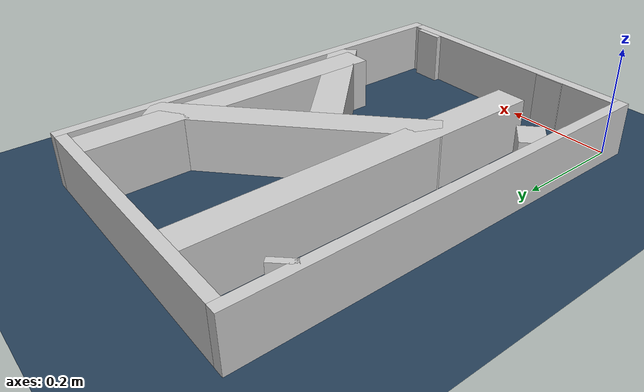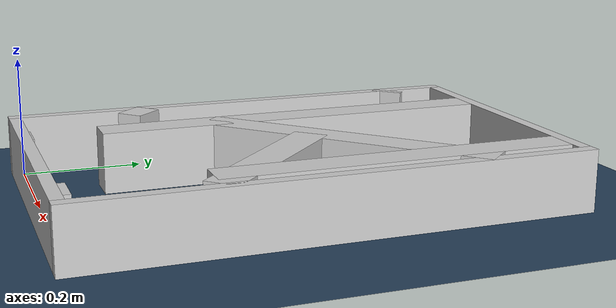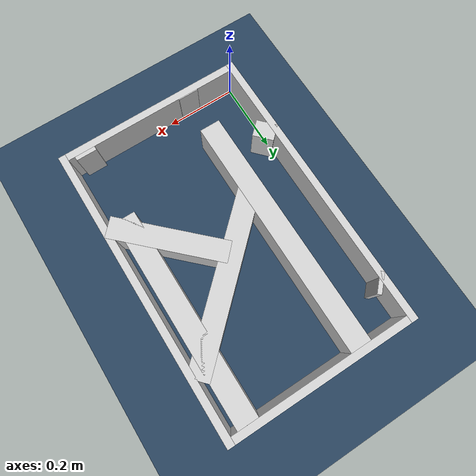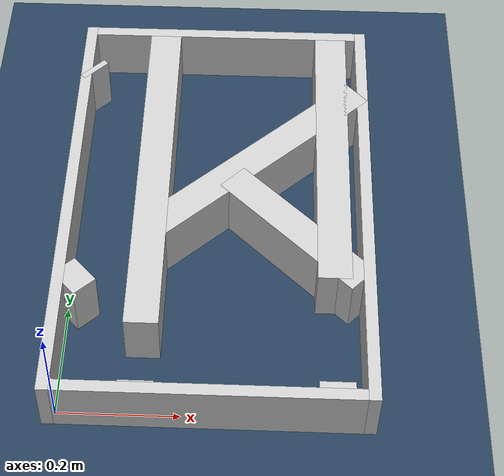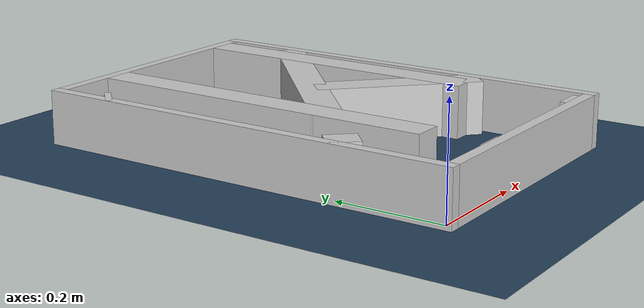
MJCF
<?xml version="1.0" ?>
<mujoco model="generated_real_template">
  <compiler angle="degree"/>
  <option timestep="0.002" integrator="implicitfast" iterations="100" cone="elliptic"/>
  <default>
    <geom density="1"/>
  </default>
  <asset>
    <texture builtin="gradient" height="3072" rgb1="0.3 0.5 0.7" rgb2="0 0 0" type="skybox" width="512"/>
    <texture builtin="checker" height="300" mark="edge" markrgb="0.8 0.8 0.8" name="groundplane" rgb1="0.2 0.3 0.4" rgb2="0.1 0.2 0.3" type="2d" width="300"/>
    <material name="groundplane" reflectance="0.2" texrepeat="5 5" texture="groundplane" texuniform="true"/>
  </asset>
  <worldbody>
    <light dir="0 0 -1" directional="true" pos="0 0 1.5"/>
    <geom name="floor" type="plane" condim="4" friction="0.5 0.005 0.001" material="groundplane" size="0 0 0.05"/>
    <body name="walls">
      <geom name="wall_boundary_left" type="box" condim="4" friction="1.0 0.005 0.0001" rgba="0.8 0.8 0.8 1" pos="-0.010000 0.387500 0.050000" euler="0 0 0.000000" size="0.010000 0.407500 0.050000"/>
      <geom name="wall_boundary_right" type="box" condim="4" friction="1.0 0.005 0.0001" rgba="0.8 0.8 0.8 1" pos="0.500000 0.387500 0.050000" euler="0 0 0.000000" size="0.010000 0.407500 0.050000"/>
      <geom name="wall_boundary_bottom" type="box" condim="4" friction="1.0 0.005 0.0001" rgba="0.8 0.8 0.8 1" pos="0.245000 -0.010000 0.050000" euler="0 0 0.000000" size="0.245000 0.010000 0.050000"/>
      <geom name="wall_boundary_top" type="box" condim="4" friction="1.0 0.005 0.0001" rgba="0.8 0.8 0.8 1" pos="0.245000 0.785000 0.050000" euler="0 0 0.000000" size="0.245000 0.010000 0.050000"/>
      <geom name="wall_inner_1_1" type="box" condim="4" friction="1.0 0.005 0.0001" rgba="0.8 0.8 0.8 1" pos="0.443390 0.005705 0.050000" euler="0 0 90.000000" size="0.005705 0.028500 0.050000"/>
      <geom name="wall_inner_1_2" type="box" condim="4" friction="1.0 0.005 0.0001" rgba="0.8 0.8 0.8 1" pos="0.443390 0.492319 0.050000" euler="0 0 90.000000" size="0.282681 0.028500 0.050000"/>
      <geom name="wall_inner_2_1" type="box" condim="4" friction="1.0 0.005 0.0001" rgba="0.8 0.8 0.8 1" pos="0.004108 0.680862 0.050000" euler="0 0 -44.177023" size="0.005728 0.028500 0.050000"/>
      <geom name="wall_inner_2_2" type="box" condim="4" friction="1.0 0.005 0.0001" rgba="0.8 0.8 0.8 1" pos="0.379301 0.316296 0.050000" euler="0 0 -44.177023" size="0.154351 0.028500 0.050000"/>
      <geom name="wall_inner_3_1" type="box" condim="4" friction="1.0 0.005 0.0001" rgba="0.8 0.8 0.8 1" pos="0.305681 0.466273 0.050000" euler="0 0 -137.176795" size="0.251303 0.028500 0.050000"/>
      <geom name="wall_inner_3_2" type="box" condim="4" friction="1.0 0.005 0.0001" rgba="0.8 0.8 0.8 1" pos="0.016916 0.198657 0.050000" euler="0 0 -137.176795" size="0.023064 0.028500 0.050000"/>
      <geom name="wall_inner_4_1" type="box" condim="4" friction="1.0 0.005 0.0001" rgba="0.8 0.8 0.8 1" pos="0.132304 0.001292 0.050000" euler="0 0 90.000000" size="0.001292 0.028500 0.050000"/>
      <geom name="wall_inner_4_2" type="box" condim="4" friction="1.0 0.005 0.0001" rgba="0.8 0.8 0.8 1" pos="0.132304 0.442317 0.050000" euler="0 0 90.000000" size="0.332683 0.028500 0.050000"/>
    </body>
  </worldbody>
</mujoco>
